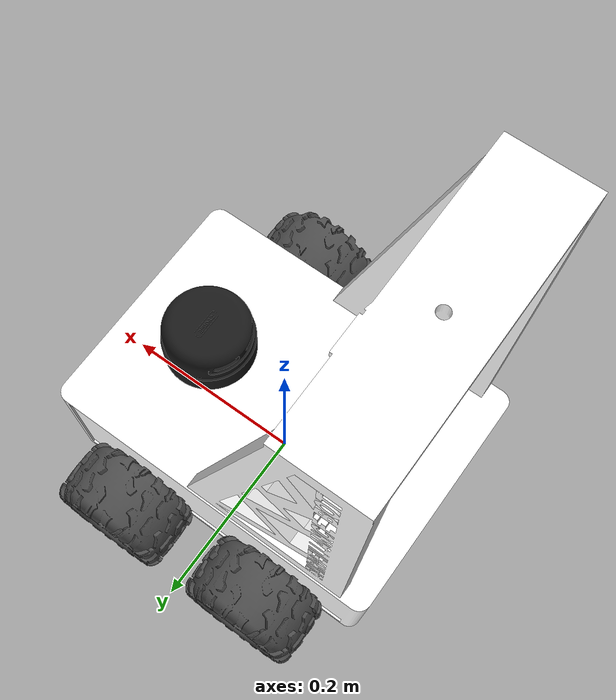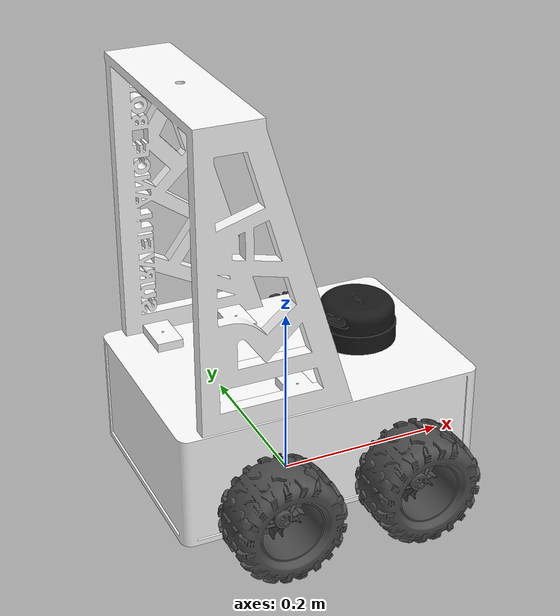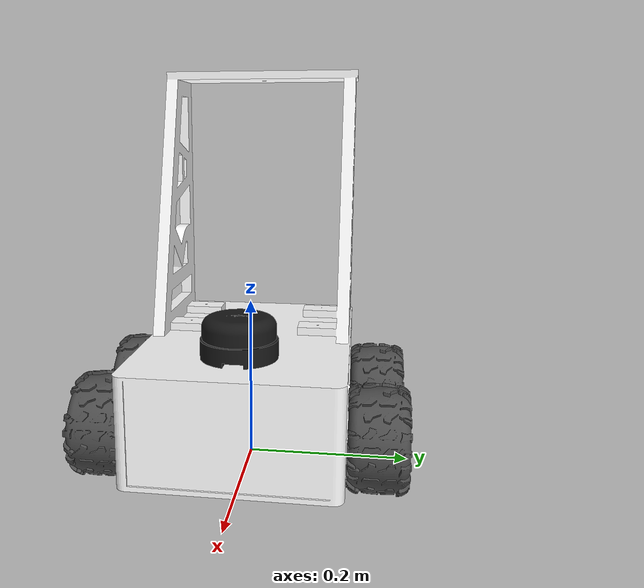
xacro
<?xml version="1.0" ?>
<robot name="surveillance_bot" xmlns:xacro="http://www.ros.org/wiki/xacro">

<xacro:include filename="$(find surveillance_bot_description)/urdf/materials.xacro" />

<link name="base_footprint"/>
<joint name="base_joint" type="fixed">
  <parent link="base_footprint"/>
  <child link="base_link"/>
  <origin xyz="0 0 0" rpy="0 0 0"/>
</joint>

<link name="base_link">
  <inertial>
    <origin xyz="-1.8004119428489673e-05 3.261317635061545e-05 0.08259390768256121" rpy="0 0 0"/>
    <mass value="11.985487330342327"/>
    <inertia ixx="0.121804" iyy="0.191973" izz="0.249611" ixy="-0.0" iyz="8e-06" ixz="1.5e-05"/>
  </inertial>
  <visual>
    <origin xyz="0 0 0" rpy="0 0 0"/>
    <geometry>
      <mesh filename="package://surveillance_bot_description/meshes/base_link.stl" scale="0.001 0.001 0.001"/>
    </geometry>
    <material name="white"/>
  </visual>
  <collision>
    <origin xyz="0 0 0" rpy="0 0 0"/>
    <geometry>
      <mesh filename="package://surveillance_bot_description/meshes/base_link.stl" scale="0.001 0.001 0.001"/>
    </geometry>
  </collision>
</link>

<link name="rear_right_wheel_1">
  <inertial>
    <origin xyz="-3.4175995545698834e-05 -0.005484874663533035 0.0002066736028292701" rpy="0 0 0"/>
    <mass value="0.5352306866247557"/>
    <inertia ixx="0.000808" iyy="0.001256" izz="0.000812" ixy="-0.0" iyz="-0.0" ixz="1e-06"/>
  </inertial>
  <visual>
    <origin xyz="0.079859 0.1575 -0.061" rpy="0 0 0"/>
    <geometry>
      <mesh filename="package://surveillance_bot_description/meshes/rear_right_wheel_1.stl" scale="0.001 0.001 0.001"/>
    </geometry>
    <material name="dark_grey"/>
  </visual>
  <collision>
    <origin xyz="0.079859 0.1575 -0.061" rpy="0 0 0"/>
    <geometry>
      <mesh filename="package://surveillance_bot_description/meshes/rear_right_wheel_1.stl" scale="0.001 0.001 0.001"/>
    </geometry>
  </collision>
</link>

<link name="front_right_wheel_1">
  <inertial>
    <origin xyz="-3.35853778285905e-05 -0.005484874663532757 0.00020667360282920072" rpy="0 0 0"/>
    <mass value="0.5352306866247557"/>
    <inertia ixx="0.000808" iyy="0.001256" izz="0.000812" ixy="-0.0" iyz="-0.0" ixz="1e-06"/>
  </inertial>
  <visual>
    <origin xyz="-0.079859 0.1575 -0.061" rpy="0 0 0"/>
    <geometry>
      <mesh filename="package://surveillance_bot_description/meshes/front_right_wheel_1.stl" scale="0.001 0.001 0.001"/>
    </geometry>
    <material name="dark_grey"/>
  </visual>
  <collision>
    <origin xyz="-0.079859 0.1575 -0.061" rpy="0 0 0"/>
    <geometry>
      <mesh filename="package://surveillance_bot_description/meshes/front_right_wheel_1.stl" scale="0.001 0.001 0.001"/>
    </geometry>
  </collision>
</link>

<link name="rear_left_wheel_1">
  <inertial>
    <origin xyz="-3.417599554567108e-05 0.0012578780563165526 0.00020667360282916603" rpy="0 0 0"/>
    <mass value="0.5352306866247557"/>
    <inertia ixx="0.000808" iyy="0.001256" izz="0.000812" ixy="-0.0" iyz="-0.0" ixz="1e-06"/>
  </inertial>
  <visual>
    <origin xyz="0.079859 -0.1595 -0.061" rpy="0 0 0"/>
    <geometry>
      <mesh filename="package://surveillance_bot_description/meshes/rear_left_wheel_1.stl" scale="0.001 0.001 0.001"/>
    </geometry>
    <material name="dark_grey"/>
  </visual>
  <collision>
    <origin xyz="0.079859 -0.1595 -0.061" rpy="0 0 0"/>
    <geometry>
      <mesh filename="package://surveillance_bot_description/meshes/rear_left_wheel_1.stl" scale="0.001 0.001 0.001"/>
    </geometry>
  </collision>
</link>

<link name="front_left_wheel_1">
  <inertial>
    <origin xyz="-3.3585377828562746e-05 0.0012578780563166914 0.00020667360282897174" rpy="0 0 0"/>
    <mass value="0.5352306866247557"/>
    <inertia ixx="0.000808" iyy="0.001256" izz="0.000812" ixy="-0.0" iyz="-0.0" ixz="1e-06"/>
  </inertial>
  <visual>
    <origin xyz="-0.079859 -0.1595 -0.061" rpy="0 0 0"/>
    <geometry>
      <mesh filename="package://surveillance_bot_description/meshes/front_left_wheel_1.stl" scale="0.001 0.001 0.001"/>
    </geometry>
    <material name="dark_grey"/>
  </visual>
  <collision>
    <origin xyz="-0.079859 -0.1595 -0.061" rpy="0 0 0"/>
    <geometry>
      <mesh filename="package://surveillance_bot_description/meshes/front_left_wheel_1.stl" scale="0.001 0.001 0.001"/>
    </geometry>
  </collision>
</link>

<link name="lidar_1">
  <inertial>
    <origin xyz="-0.0006699831389366528 -1.684403434149538e-05 0.022853133112458512" rpy="0 0 0"/>
    <mass value="2.1559203937792097"/>
    <inertia ixx="0.001441" iyy="0.001374" izz="0.00201" ixy="1e-06" iyz="1e-06" ixz="4e-05"/>
  </inertial>
  <visual>
    <origin xyz="-0.0875 0.0 -0.155" rpy="0 0 0"/>
    <geometry>
      <mesh filename="package://surveillance_bot_description/meshes/lidar_1.stl" scale="0.001 0.001 0.001"/>
    </geometry>
    <material name="black"/>
  </visual>
  <collision>
    <origin xyz="-0.0875 0.0 -0.155" rpy="0 0 0"/>
    <geometry>
      <mesh filename="package://surveillance_bot_description/meshes/lidar_1.stl" scale="0.001 0.001 0.001"/>
    </geometry>
  </collision>
</link>

<link name="tower_1">
  <inertial>
    <origin xyz="0.0854385892934485 -0.0010965480335846886 0.136853332767428" rpy="0 0 0"/>
    <mass value="8.076336158551934"/>
    <inertia ixx="0.20008" iyy="0.122445" izz="0.108217" ixy="0.000348" iyz="-0.002386" ixz="0.015825"/>
  </inertial>
  <visual>
    <origin xyz="0.175 -0.003515 -0.182485" rpy="0 0 0"/>
    <geometry>
      <mesh filename="package://surveillance_bot_description/meshes/tower_1.stl" scale="0.001 0.001 0.001"/>
    </geometry>
    <material name="white"/>
  </visual>
  <collision>
    <origin xyz="0.175 -0.003515 -0.182485" rpy="0 0 0"/>
    <geometry>
      <mesh filename="package://surveillance_bot_description/meshes/tower_1.stl" scale="0.001 0.001 0.001"/>
    </geometry>
  </collision>
</link>

<joint name="rear_right_wheel_joint" type="continuous">
  <origin xyz="-0.079859 -0.1575 0.061" rpy="0 0 0"/>
  <parent link="base_link"/>
  <child link="rear_right_wheel_1"/>
  <axis xyz="-0.0 -1.0 0.0"/>
</joint>

<joint name="front_right_wheel_joint" type="continuous">
  <origin xyz="0.079859 -0.1575 0.061" rpy="0 0 0"/>
  <parent link="base_link"/>
  <child link="front_right_wheel_1"/>
  <axis xyz="-0.0 -1.0 0.0"/>
</joint>

<joint name="rear_left_wheel_joint" type="continuous">
  <origin xyz="-0.079859 0.1595 0.061" rpy="0 0 0"/>
  <parent link="base_link"/>
  <child link="rear_left_wheel_1"/>
  <axis xyz="0.0 1.0 -0.0"/>
</joint>

<joint name="front_left_wheel_joint" type="continuous">
  <origin xyz="0.079859 0.1595 0.061" rpy="0 0 0"/>
  <parent link="base_link"/>
  <child link="front_left_wheel_1"/>
  <axis xyz="0.0 1.0 -0.0"/>
</joint>

<joint name="lidar_joint" type="fixed">
  <origin xyz="0.0875 0.0 0.155" rpy="0 0 3.14159"/>
  <parent link="base_link"/>
  <child link="lidar_1"/>
</joint>

<joint name="tower_joint" type="fixed">
  <origin xyz="-0.175 0.003515 0.182485" rpy="0 0 0"/>
  <parent link="base_link"/>
  <child link="tower_1"/>
</joint>

</robot>

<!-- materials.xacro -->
<robot xmlns:xacro="http://www.ros.org/wiki/xacro">

  <material name="silver">
    <color rgba="0.7 0.7 0.7 1.0"/>
  </material>

  <material name="black">
    <color rgba="0.1 0.1 0.1 1.0"/>
  </material>

  <material name="dark_grey">
    <color rgba="0.3 0.3 0.3 1.0"/>
  </material>

  <material name="blue">
    <color rgba="0.0 0.3 0.8 1.0"/>
  </material>

  <material name="white">
    <color rgba="1.0 1.0 1.0 1.0"/>
  </material>

</robot>
